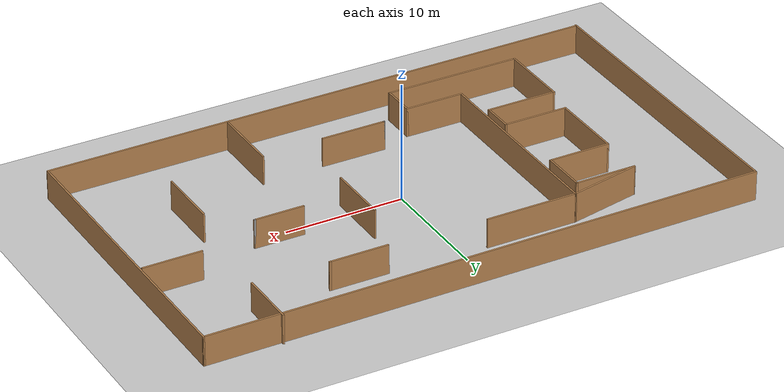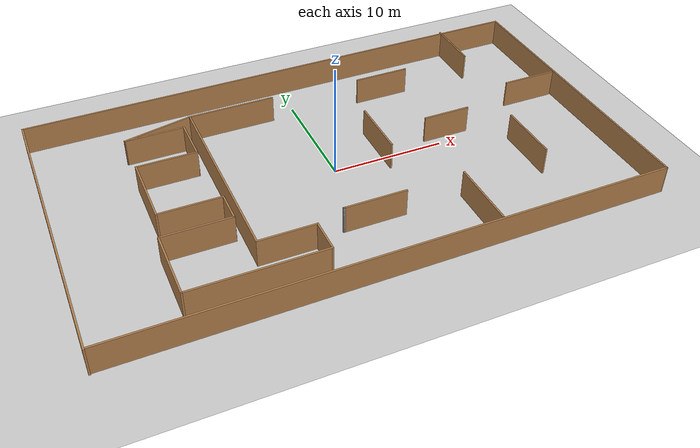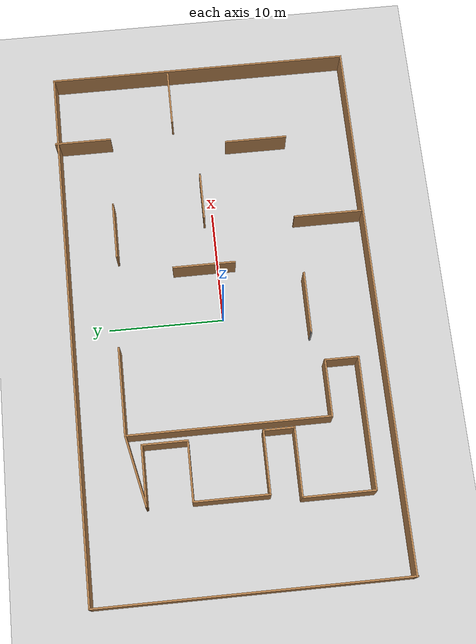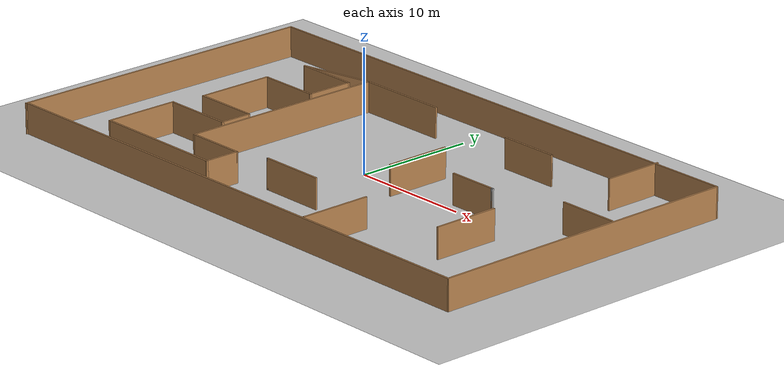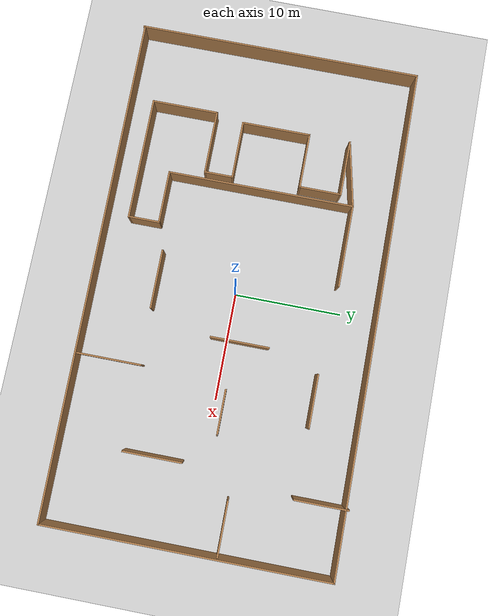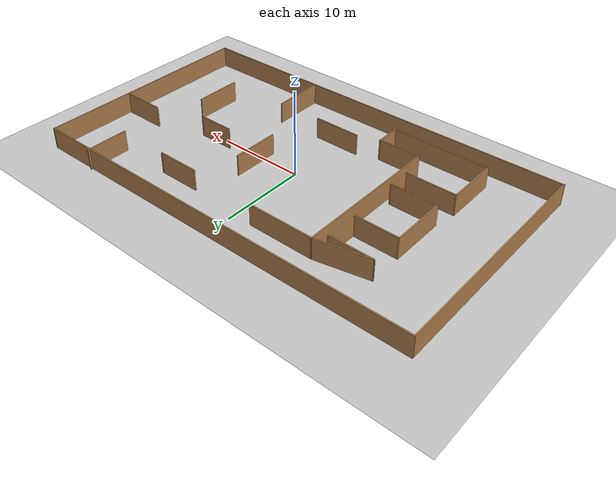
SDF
<?xml version="1.0"?>
<sdf version="1.6">
  <world name="default">

    <include>
      <uri>model://ground_plane</uri>
    </include>

    <include>
      <uri>model://sun</uri>
    </include>

    <scene>
      <shadows>false</shadows>
    </scene>

    <gui fullscreen='0'>
      <camera name='user_camera'>
        <pose frame=''>0.319654 -0.235002 9.29441 0 1.5138 0.009599</pose>
        <view_controller>orbit</view_controller>
        <projection_type>perspective</projection_type>
      </camera>
    </gui>

    <physics type="ode">
      <real_time_update_rate>1000.0</real_time_update_rate>
      <max_step_size>0.001</max_step_size>
      <real_time_factor>1</real_time_factor>
      <ode>
        <solver>
          <type>quick</type>
          <iters>150</iters>
          <precon_iters>0</precon_iters>
          <sor>1.400000</sor>
          <use_dynamic_moi_rescaling>1</use_dynamic_moi_rescaling>
        </solver>
        <constraints>
          <cfm>0.00001</cfm>
          <erp>0.2</erp>
          <contact_max_correcting_vel>2000.000000</contact_max_correcting_vel>
          <contact_surface_layer>0.01000</contact_surface_layer>
        </constraints>
      </ode>
    </physics>

    <include>
	# Maze_2 Model
      <uri>model://Maze_2</uri>
      <pose>0 0 0 0 0 0</pose>
    </include>

  </world>
</sdf>

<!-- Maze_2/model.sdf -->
<sdf version='1.7'>
  <model name='Maze_2'>
    <pose>-10.4848 -0.079583 0 0 -0 0</pose>
    <link name='Wall_16'>
      <collision name='Wall_16_Collision'>
        <geometry>
          <box>
            <size>26.5 0.15 2.5</size>
          </box>
        </geometry>
        <pose>0 0 1.25 0 -0 0</pose>
      </collision>
      <visual name='Wall_16_Visual'>
        <pose>0 0 1.25 0 -0 0</pose>
        <geometry>
          <box>
            <size>26.5 0.15 2.5</size>
          </box>
        </geometry>
        <material>
          <script>
            <uri>file://media/materials/scripts/gazebo.material</uri>
            <name>Gazebo/Wood</name>
          </script>
          <ambient>1 1 1 1</ambient>
        </material>
        <meta>
          <layer>0</layer>
        </meta>
      </visual>
      <pose>-23.5032 -0.233885 0 0 -0 -1.5708</pose>
    </link>
    <link name='Wall_17'>
      <collision name='Wall_17_Collision'>
        <geometry>
          <box>
            <size>47.1568 0.15 2.5</size>
          </box>
        </geometry>
        <pose>0 0 1.25 0 -0 0</pose>
      </collision>
      <visual name='Wall_17_Visual'>
        <pose>0 0 1.25 0 -0 0</pose>
        <geometry>
          <box>
            <size>47.1568 0.15 2.5</size>
          </box>
        </geometry>
        <material>
          <script>
            <uri>file://media/materials/scripts/gazebo.material</uri>
            <name>Gazebo/Wood</name>
          </script>
          <ambient>1 1 1 1</ambient>
        </material>
        <meta>
          <layer>0</layer>
        </meta>
      </visual>
      <pose>0 -13.232 0 0 -0 0.004516</pose>
    </link>
    <link name='Wall_18'>
      <collision name='Wall_18_Collision'>
        <geometry>
          <box>
            <size>26.5 0.15 2.5</size>
          </box>
        </geometry>
        <pose>0 0 1.25 0 -0 0</pose>
      </collision>
      <visual name='Wall_18_Visual'>
        <pose>0 0 1.25 0 -0 0</pose>
        <geometry>
          <box>
            <size>26.5 0.15 2.5</size>
          </box>
        </geometry>
        <material>
          <script>
            <uri>file://media/materials/scripts/gazebo.material</uri>
            <name>Gazebo/Wood</name>
          </script>
          <ambient>1 1 1 1</ambient>
        </material>
        <meta>
          <layer>0</layer>
        </meta>
      </visual>
      <pose>23.5032 0.049143 0 0 -0 1.5708</pose>
    </link>
    <link name='Wall_19'>
      <collision name='Wall_19_Collision'>
        <geometry>
          <box>
            <size>47.1568 0.15 2.5</size>
          </box>
        </geometry>
        <pose>0 0 1.25 0 -0 0</pose>
      </collision>
      <visual name='Wall_19_Visual'>
        <pose>0 0 1.25 0 -0 0</pose>
        <geometry>
          <box>
            <size>47.1568 0.15 2.5</size>
          </box>
        </geometry>
        <material>
          <script>
            <uri>file://media/materials/scripts/gazebo.material</uri>
            <name>Gazebo/Wood</name>
          </script>
          <ambient>1 1 1 1</ambient>
        </material>
        <meta>
          <layer>0</layer>
        </meta>
      </visual>
      <pose>0 13.118 0 0 -0 -3.13708</pose>
    </link>
    <link name='Wall_21'>
      <collision name='Wall_21_Collision'>
        <geometry>
          <box>
            <size>0.16 0.15 2.5</size>
          </box>
        </geometry>
        <pose>0 0 1.25 0 -0 0</pose>
      </collision>
      <visual name='Wall_21_Visual'>
        <pose>0 0 1.25 0 -0 0</pose>
        <geometry>
          <box>
            <size>0.16 0.15 2.5</size>
          </box>
        </geometry>
        <material>
          <script>
            <uri>file://media/materials/scripts/gazebo.material</uri>
            <name>Gazebo/Wood</name>
          </script>
          <ambient>1 1 1 1</ambient>
        </material>
        <meta>
          <layer>0</layer>
        </meta>
      </visual>
      <pose>10.8733 8.72993 0 0 -0 0</pose>
    </link>
    <link name='Wall_22'>
      <collision name='Wall_22_Collision'>
        <geometry>
          <box>
            <size>5 0.15 2.5</size>
          </box>
        </geometry>
        <pose>0 0 1.25 0 -0 0</pose>
      </collision>
      <visual name='Wall_22_Visual'>
        <pose>0 0 1.25 0 -0 0</pose>
        <geometry>
          <box>
            <size>5 0.15 2.5</size>
          </box>
        </geometry>
        <material>
          <script>
            <uri>file://media/materials/scripts/gazebo.material</uri>
            <name>Gazebo/Wood</name>
          </script>
          <ambient>1 1 1 1</ambient>
        </material>
        <meta>
          <layer>0</layer>
        </meta>
      </visual>
      <pose>8.4533 8.72993 0 0 -0 3.14159</pose>
    </link>
    <link name='Wall_24'>
      <collision name='Wall_24_Collision'>
        <geometry>
          <box>
            <size>0.16 0.15 2.5</size>
          </box>
        </geometry>
        <pose>0 0 1.25 0 -0 0</pose>
      </collision>
      <visual name='Wall_24_Visual'>
        <pose>0 0 1.25 0 -0 0</pose>
        <geometry>
          <box>
            <size>0.16 0.15 2.5</size>
          </box>
        </geometry>
        <material>
          <script>
            <uri>file://media/materials/scripts/gazebo.material</uri>
            <name>Gazebo/Grey</name>
          </script>
          <ambient>1 1 1 1</ambient>
        </material>
        <meta>
          <layer>0</layer>
        </meta>
      </visual>
      <pose>-2.44882 -7.32082 0 0 -0 0</pose>
    </link>
    <link name='Wall_25'>
      <collision name='Wall_25_Collision'>
        <geometry>
          <box>
            <size>5.5 0.15 2.5</size>
          </box>
        </geometry>
        <pose>0 0 1.25 0 -0 0</pose>
      </collision>
      <visual name='Wall_25_Visual'>
        <pose>0 0 1.25 0 -0 0</pose>
        <geometry>
          <box>
            <size>5.5 0.15 2.5</size>
          </box>
        </geometry>
        <material>
          <script>
            <uri>file://media/materials/scripts/gazebo.material</uri>
            <name>Gazebo/Wood</name>
          </script>
          <ambient>1 1 1 1</ambient>
        </material>
        <meta>
          <layer>0</layer>
        </meta>
      </visual>
      <pose>0.231175 -7.32082 0 0 -0 0</pose>
    </link>
    <link name='Wall_27'>
      <collision name='Wall_27_Collision'>
        <geometry>
          <box>
            <size>6 0.15 2.5</size>
          </box>
        </geometry>
        <pose>0 0 1.25 0 -0 0</pose>
      </collision>
      <visual name='Wall_27_Visual'>
        <pose>0 0 1.25 0 -0 0</pose>
        <geometry>
          <box>
            <size>6 0.15 2.5</size>
          </box>
        </geometry>
        <material>
          <script>
            <uri>file://media/materials/scripts/gazebo.material</uri>
            <name>Gazebo/Wood</name>
          </script>
          <ambient>1 1 1 1</ambient>
        </material>
        <meta>
          <layer>0</layer>
        </meta>
      </visual>
      <pose>8.19317 -10.0671 0 0 -0 1.5708</pose>
    </link>
    <link name='Wall_29'>
      <collision name='Wall_29_Collision'>
        <geometry>
          <box>
            <size>5.5 0.15 2.5</size>
          </box>
        </geometry>
        <pose>0 0 1.25 0 -0 0</pose>
      </collision>
      <visual name='Wall_29_Visual'>
        <pose>0 0 1.25 0 -0 0</pose>
        <geometry>
          <box>
            <size>5.5 0.15 2.5</size>
          </box>
        </geometry>
        <material>
          <script>
            <uri>file://media/materials/scripts/gazebo.material</uri>
            <name>Gazebo/Wood</name>
          </script>
          <ambient>1 1 1 1</ambient>
        </material>
        <meta>
          <layer>0</layer>
        </meta>
      </visual>
      <pose>4.5015 1.23971 0 0 -0 -1.5708</pose>
    </link>
    <link name='Wall_31'>
      <collision name='Wall_31_Collision'>
        <geometry>
          <box>
            <size>0.16 0.15 2.5</size>
          </box>
        </geometry>
        <pose>0 0 1.25 0 -0 0</pose>
      </collision>
      <visual name='Wall_31_Visual'>
        <pose>0 0 1.25 0 -0 0</pose>
        <geometry>
          <box>
            <size>0.16 0.15 2.5</size>
          </box>
        </geometry>
        <material>
          <script>
            <uri>file://media/materials/scripts/gazebo.material</uri>
            <name>Gazebo/Grey</name>
          </script>
          <ambient>1 1 1 1</ambient>
        </material>
        <meta>
          <layer>0</layer>
        </meta>
      </visual>
      <pose>13.0134 0.811563 0 0 -0 0</pose>
    </link>
    <link name='Wall_32'>
      <collision name='Wall_32_Collision'>
        <geometry>
          <box>
            <size>4.25 0.15 2.5</size>
          </box>
        </geometry>
        <pose>0 0 1.25 0 -0 0</pose>
      </collision>
      <visual name='Wall_32_Visual'>
        <pose>0 0 1.25 0 -0 0</pose>
        <geometry>
          <box>
            <size>4.25 0.15 2.5</size>
          </box>
        </geometry>
        <material>
          <script>
            <uri>file://media/materials/scripts/gazebo.material</uri>
            <name>Gazebo/Wood</name>
          </script>
          <ambient>1 1 1 1</ambient>
        </material>
        <meta>
          <layer>0</layer>
        </meta>
      </visual>
      <pose>10.9684 0.811563 0 0 -0 3.14159</pose>
    </link>
    <link name='Wall_34'>
      <collision name='Wall_34_Collision'>
        <geometry>
          <box>
            <size>5 0.15 2.5</size>
          </box>
        </geometry>
        <pose>0 0 1.25 0 -0 0</pose>
      </collision>
      <visual name='Wall_34_Visual'>
        <pose>0 0 1.25 0 -0 0</pose>
        <geometry>
          <box>
            <size>5 0.15 2.5</size>
          </box>
        </geometry>
        <material>
          <script>
            <uri>file://media/materials/scripts/gazebo.material</uri>
            <name>Gazebo/Wood</name>
          </script>
          <ambient>1 1 1 1</ambient>
        </material>
        <meta>
          <layer>0</layer>
        </meta>
      </visual>
      <pose>20.8372 2.84466 0 0 -0 0</pose>
    </link>
    <link name='Wall_36'>
      <collision name='Wall_36_Collision'>
        <geometry>
          <box>
            <size>5.5 0.15 2.5</size>
          </box>
        </geometry>
        <pose>0 0 1.25 0 -0 0</pose>
      </collision>
      <visual name='Wall_36_Visual'>
        <pose>0 0 1.25 0 -0 0</pose>
        <geometry>
          <box>
            <size>5.5 0.15 2.5</size>
          </box>
        </geometry>
        <material>
          <script>
            <uri>file://media/materials/scripts/gazebo.material</uri>
            <name>Gazebo/Wood</name>
          </script>
          <ambient>1 1 1 1</ambient>
        </material>
        <meta>
          <layer>0</layer>
        </meta>
      </visual>
      <pose>15.951 -4.48506 0 0 -0 -1.5708</pose>
    </link>
    <link name='Wall_41'>
      <collision name='Wall_41_Collision'>
        <geometry>
          <box>
            <size>5 0.15 2.5</size>
          </box>
        </geometry>
        <pose>0 0 1.25 0 -0 0</pose>
      </collision>
      <visual name='Wall_41_Visual'>
        <pose>0 0 1.25 0 -0 0</pose>
        <geometry>
          <box>
            <size>5 0.15 2.5</size>
          </box>
        </geometry>
        <material>
          <script>
            <uri>file://media/materials/scripts/gazebo.material</uri>
            <name>Gazebo/Wood</name>
          </script>
          <ambient>1 1 1 1</ambient>
        </material>
        <meta>
          <layer>0</layer>
        </meta>
      </visual>
      <pose>17.2068 10.9839 0 0 -0 -1.5708</pose>
    </link>
    <link name='Wall_43'>
      <collision name='Wall_43_Collision'>
        <geometry>
          <box>
            <size>7.75 0.15 2.5</size>
          </box>
        </geometry>
        <pose>0 0 1.25 0 -0 0</pose>
      </collision>
      <visual name='Wall_43_Visual'>
        <pose>0 0 1.25 0 -0 0</pose>
        <geometry>
          <box>
            <size>7.75 0.15 2.5</size>
          </box>
        </geometry>
        <material>
          <script>
            <uri>file://media/materials/scripts/gazebo.material</uri>
            <name>Gazebo/Wood</name>
          </script>
          <ambient>1 1 1 1</ambient>
        </material>
        <meta>
          <layer>0</layer>
        </meta>
      </visual>
      <pose>-6.05135 9.16346 0 0 -0 3.14159</pose>
    </link>
    <link name='Wall_45'>
      <collision name='Wall_45_Collision'>
        <geometry>
          <box>
            <size>17.5 0.15 2.5</size>
          </box>
        </geometry>
        <pose>0 0 1.25 0 -0 0</pose>
      </collision>
      <visual name='Wall_45_Visual'>
        <pose>0 0 1.25 0 -0 0</pose>
        <geometry>
          <box>
            <size>17.5 0.15 2.5</size>
          </box>
        </geometry>
        <material>
          <script>
            <uri>file://media/materials/scripts/gazebo.material</uri>
            <name>Gazebo/Wood</name>
          </script>
          <ambient>1 1 1 1</ambient>
        </material>
        <meta>
          <layer>0</layer>
        </meta>
      </visual>
      <pose>-9.85135 0.488463 0 0 -0 -1.5708</pose>
    </link>
    <link name='Wall_46'>
      <collision name='Wall_46_Collision'>
        <geometry>
          <box>
            <size>5 0.15 2.5</size>
          </box>
        </geometry>
        <pose>0 0 1.25 0 -0 0</pose>
      </collision>
      <visual name='Wall_46_Visual'>
        <pose>0 0 1.25 0 -0 0</pose>
        <geometry>
          <box>
            <size>5 0.15 2.5</size>
          </box>
        </geometry>
        <material>
          <script>
            <uri>file://media/materials/scripts/gazebo.material</uri>
            <name>Gazebo/Wood</name>
          </script>
          <ambient>1 1 1 1</ambient>
        </material>
        <meta>
          <layer>0</layer>
        </meta>
      </visual>
      <pose>-7.42635 -8.18654 0 0 -0 0</pose>
    </link>
    <link name='Wall_47'>
      <collision name='Wall_47_Collision'>
        <geometry>
          <box>
            <size>3 0.15 2.5</size>
          </box>
        </geometry>
        <pose>0 0 1.25 0 -0 0</pose>
      </collision>
      <visual name='Wall_47_Visual'>
        <pose>0 0 1.25 0 -0 0</pose>
        <geometry>
          <box>
            <size>3 0.15 2.5</size>
          </box>
        </geometry>
        <material>
          <script>
            <uri>file://media/materials/scripts/gazebo.material</uri>
            <name>Gazebo/Wood</name>
          </script>
          <ambient>1 1 1 1</ambient>
        </material>
        <meta>
          <layer>0</layer>
        </meta>
      </visual>
      <pose>-5.00135 -9.61154 0 0 -0 -1.5708</pose>
    </link>
    <link name='Wall_48'>
      <collision name='Wall_48_Collision'>
        <geometry>
          <box>
            <size>11.5 0.15 2.5</size>
          </box>
        </geometry>
        <pose>0 0 1.25 0 -0 0</pose>
      </collision>
      <visual name='Wall_48_Visual'>
        <pose>0 0 1.25 0 -0 0</pose>
        <geometry>
          <box>
            <size>11.5 0.15 2.5</size>
          </box>
        </geometry>
        <material>
          <script>
            <uri>file://media/materials/scripts/gazebo.material</uri>
            <name>Gazebo/Wood</name>
          </script>
          <ambient>1 1 1 1</ambient>
        </material>
        <meta>
          <layer>0</layer>
        </meta>
      </visual>
      <pose>-10.6763 -11.0365 0 0 -0 3.14159</pose>
    </link>
    <link name='Wall_49'>
      <collision name='Wall_49_Collision'>
        <geometry>
          <box>
            <size>6.25 0.15 2.5</size>
          </box>
        </geometry>
        <pose>0 0 1.25 0 -0 0</pose>
      </collision>
      <visual name='Wall_49_Visual'>
        <pose>0 0 1.25 0 -0 0</pose>
        <geometry>
          <box>
            <size>6.25 0.15 2.5</size>
          </box>
        </geometry>
        <material>
          <script>
            <uri>file://media/materials/scripts/gazebo.material</uri>
            <name>Gazebo/Wood</name>
          </script>
          <ambient>1 1 1 1</ambient>
        </material>
        <meta>
          <layer>0</layer>
        </meta>
      </visual>
      <pose>-16.3514 -7.98654 0 0 -0 1.5708</pose>
    </link>
    <link name='Wall_50'>
      <collision name='Wall_50_Collision'>
        <geometry>
          <box>
            <size>6 0.15 2.5</size>
          </box>
        </geometry>
        <pose>0 0 1.25 0 -0 0</pose>
      </collision>
      <visual name='Wall_50_Visual'>
        <pose>0 0 1.25 0 -0 0</pose>
        <geometry>
          <box>
            <size>6 0.15 2.5</size>
          </box>
        </geometry>
        <material>
          <script>
            <uri>file://media/materials/scripts/gazebo.material</uri>
            <name>Gazebo/Wood</name>
          </script>
          <ambient>1 1 1 1</ambient>
        </material>
        <meta>
          <layer>0</layer>
        </meta>
      </visual>
      <pose>-13.4263 -4.93654 0 0 -0 0</pose>
    </link>
    <link name='Wall_51'>
      <collision name='Wall_51_Collision'>
        <geometry>
          <box>
            <size>2.75 0.15 2.5</size>
          </box>
        </geometry>
        <pose>0 0 1.25 0 -0 0</pose>
      </collision>
      <visual name='Wall_51_Visual'>
        <pose>0 0 1.25 0 -0 0</pose>
        <geometry>
          <box>
            <size>2.75 0.15 2.5</size>
          </box>
        </geometry>
        <material>
          <script>
            <uri>file://media/materials/scripts/gazebo.material</uri>
            <name>Gazebo/Wood</name>
          </script>
          <ambient>1 1 1 1</ambient>
        </material>
        <meta>
          <layer>0</layer>
        </meta>
      </visual>
      <pose>-10.5014 -3.63654 0 0 -0 1.5708</pose>
    </link>
    <link name='Wall_52'>
      <collision name='Wall_52_Collision'>
        <geometry>
          <box>
            <size>5.5 0.15 2.5</size>
          </box>
        </geometry>
        <pose>0 0 1.25 0 -0 0</pose>
      </collision>
      <visual name='Wall_52_Visual'>
        <pose>0 0 1.25 0 -0 0</pose>
        <geometry>
          <box>
            <size>5.5 0.15 2.5</size>
          </box>
        </geometry>
        <material>
          <script>
            <uri>file://media/materials/scripts/gazebo.material</uri>
            <name>Gazebo/Wood</name>
          </script>
          <ambient>1 1 1 1</ambient>
        </material>
        <meta>
          <layer>0</layer>
        </meta>
      </visual>
      <pose>-13.1763 -2.33654 0 0 -0 3.14159</pose>
    </link>
    <link name='Wall_53'>
      <collision name='Wall_53_Collision'>
        <geometry>
          <box>
            <size>6.5 0.15 2.5</size>
          </box>
        </geometry>
        <pose>0 0 1.25 0 -0 0</pose>
      </collision>
      <visual name='Wall_53_Visual'>
        <pose>0 0 1.25 0 -0 0</pose>
        <geometry>
          <box>
            <size>6.5 0.15 2.5</size>
          </box>
        </geometry>
        <material>
          <script>
            <uri>file://media/materials/scripts/gazebo.material</uri>
            <name>Gazebo/Wood</name>
          </script>
          <ambient>1 1 1 1</ambient>
        </material>
        <meta>
          <layer>0</layer>
        </meta>
      </visual>
      <pose>-15.8514 0.838463 0 0 -0 1.5708</pose>
    </link>
    <link name='Wall_54'>
      <collision name='Wall_54_Collision'>
        <geometry>
          <box>
            <size>5.25 0.15 2.5</size>
          </box>
        </geometry>
        <pose>0 0 1.25 0 -0 0</pose>
      </collision>
      <visual name='Wall_54_Visual'>
        <pose>0 0 1.25 0 -0 0</pose>
        <geometry>
          <box>
            <size>5.25 0.15 2.5</size>
          </box>
        </geometry>
        <material>
          <script>
            <uri>file://media/materials/scripts/gazebo.material</uri>
            <name>Gazebo/Wood</name>
          </script>
          <ambient>1 1 1 1</ambient>
        </material>
        <meta>
          <layer>0</layer>
        </meta>
      </visual>
      <pose>-13.3013 4.01346 0 0 -0 0</pose>
    </link>
    <link name='Wall_55'>
      <collision name='Wall_55_Collision'>
        <geometry>
          <box>
            <size>4 0.15 2.5</size>
          </box>
        </geometry>
        <pose>0 0 1.25 0 -0 0</pose>
      </collision>
      <visual name='Wall_55_Visual'>
        <pose>0 0 1.25 0 -0 0</pose>
        <geometry>
          <box>
            <size>4 0.15 2.5</size>
          </box>
        </geometry>
        <material>
          <script>
            <uri>file://media/materials/scripts/gazebo.material</uri>
            <name>Gazebo/Wood</name>
          </script>
          <ambient>1 1 1 1</ambient>
        </material>
        <meta>
          <layer>0</layer>
        </meta>
      </visual>
      <pose>-10.7514 5.93846 0 0 -0 1.5708</pose>
    </link>
    <link name='Wall_56'>
      <collision name='Wall_56_Collision'>
        <geometry>
          <box>
            <size>5.25 0.15 2.5</size>
          </box>
        </geometry>
        <pose>0 0 1.25 0 -0 0</pose>
      </collision>
      <visual name='Wall_56_Visual'>
        <pose>0 0 1.25 0 -0 0</pose>
        <geometry>
          <box>
            <size>5.25 0.15 2.5</size>
          </box>
        </geometry>
        <material>
          <script>
            <uri>file://media/materials/scripts/gazebo.material</uri>
            <name>Gazebo/Wood</name>
          </script>
          <ambient>1 1 1 1</ambient>
        </material>
        <meta>
          <layer>0</layer>
        </meta>
      </visual>
      <pose>-13.3013 7.86346 0 0 -0 3.14159</pose>
    </link>
    <link name='Wall_57'>
      <collision name='Wall_57_Collision'>
        <geometry>
          <box>
            <size>6.28922 0.15 2.5</size>
          </box>
        </geometry>
        <pose>0 0 1.25 0 -0 0</pose>
      </collision>
      <visual name='Wall_57_Visual'>
        <pose>0 0 1.25 0 -0 0</pose>
        <geometry>
          <box>
            <size>6.28922 0.15 2.5</size>
          </box>
        </geometry>
        <material>
          <script>
            <uri>file://media/materials/scripts/gazebo.material</uri>
            <name>Gazebo/Wood</name>
          </script>
          <ambient>1 1 1 1</ambient>
        </material>
        <meta>
          <layer>0</layer>
        </meta>
      </visual>
      <pose>-12.8514 8.51346 0 0 -0 0.213369</pose>
    </link>
    <static>1</static>
  </model>
</sdf>
